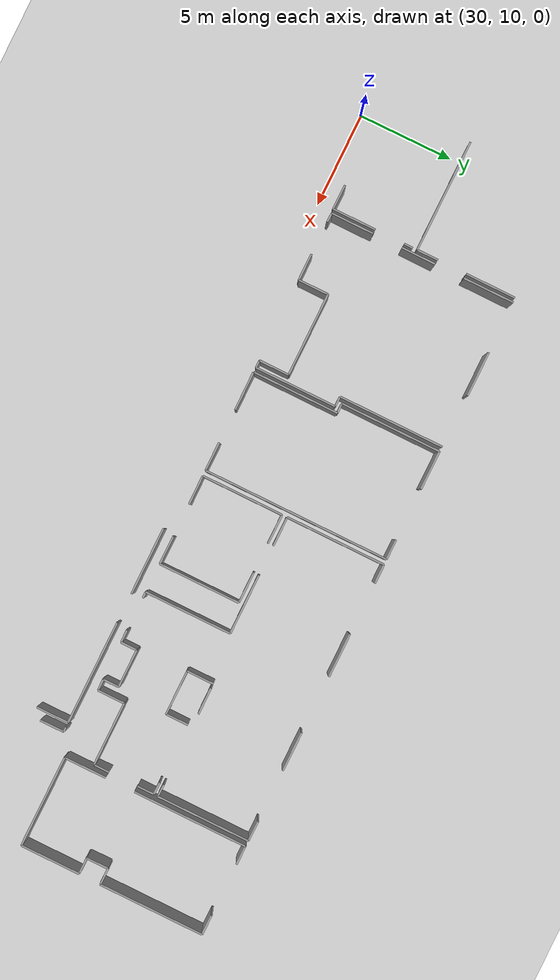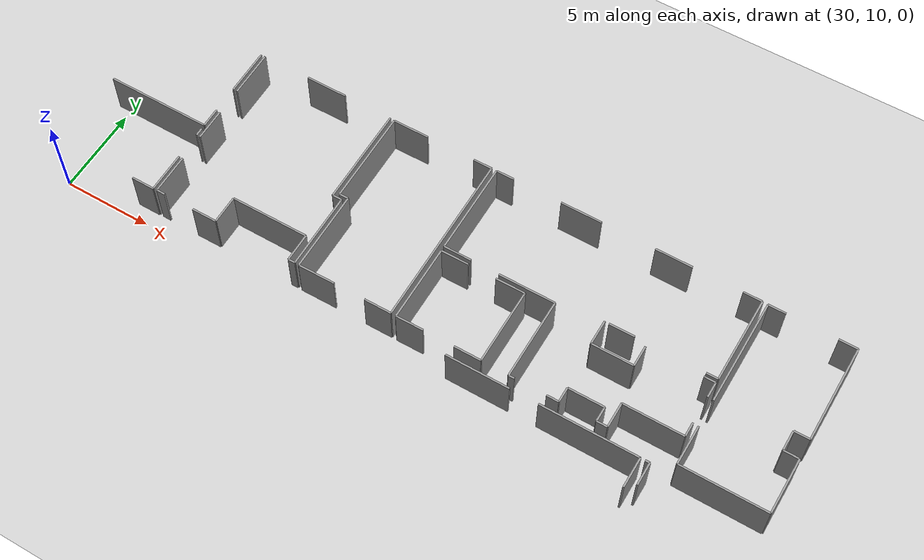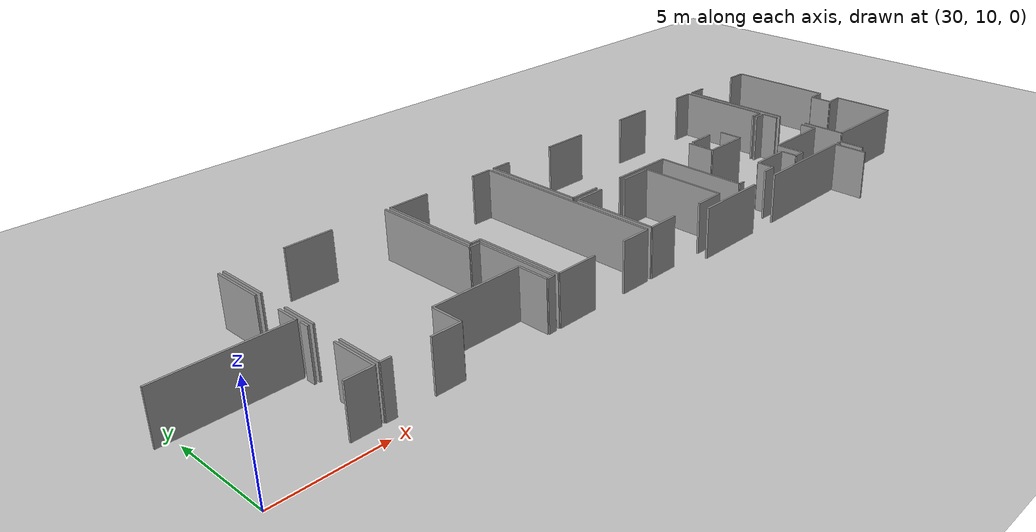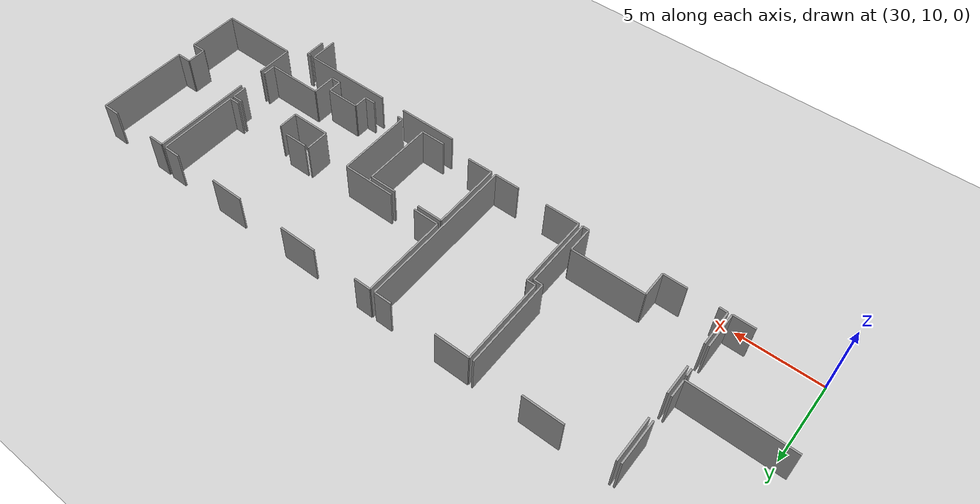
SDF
<sdf version="1.6">
 <world name="default">
  <model name="ground_plane">
   <static>1</static>
   <link name="link">
    <collision name="collision">
     <geometry><plane><normal>0 0 1</normal><size>100 100</size></plane></geometry>
     <surface><friction><ode><mu>100</mu><mu2>50</mu2></ode></friction></surface>
    </collision>
    <visual name="visual">
     <cast_shadows>0</cast_shadows>
     <geometry><plane><normal>0 0 1</normal><size>100 100</size></plane></geometry>
     <material>
      <script><uri>file://media/materials/scripts/gazebo.material</uri><name>Gazebo/Grey</name></script>
     </material>
    </visual>
   </link>
  </model>
  <model name="50055640">
   <static>1</static>
   <link name="Wall_373">
    <collision name="Wall_373_Collision">
     <geometry><box><size>3.5890146708 0.1 2.5</size></box></geometry>
     <pose>1.7945073354 0 1.25 0 0 0</pose>
    </collision>
    <visual name="Wall_373_Visual">
     <pose>1.7945073354 0 1.25 0 0 0</pose>
     <geometry><box><size>3.5890146708 0.1 2.5</size></box></geometry>
     <material>
      <script><uri>file://media/materials/scripts/gazebo.material</uri><name>Gazebo/Grey</name></script>
      <ambient>1 1 1 1</ambient>
     </material>
    </visual>
    <pose>123.435707396 -10.5616274938 0 0 0 0.0</pose>
   </link>
   <link name="Wall_374">
    <collision name="Wall_374_Collision">
     <geometry><box><size>5.48251180263 0.1 2.5</size></box></geometry>
     <pose>2.74125590131 0 1.25 0 0 0</pose>
    </collision>
    <visual name="Wall_374_Visual">
     <pose>2.74125590131 0 1.25 0 0 0</pose>
     <geometry><box><size>5.48251180263 0.1 2.5</size></box></geometry>
     <material>
      <script><uri>file://media/materials/scripts/gazebo.material</uri><name>Gazebo/Grey</name></script>
      <ambient>1 1 1 1</ambient>
     </material>
    </visual>
    <pose>128.60475151 -10.5616274938 0 0 0 0.0</pose>
   </link>
   <link name="Wall_375">
    <collision name="Wall_375_Collision">
     <geometry><box><size>1.72153408802 0.1 2.5</size></box></geometry>
     <pose>0.860767044012 0 1.25 0 0 0</pose>
    </collision>
    <visual name="Wall_375_Visual">
     <pose>0.860767044012 0 1.25 0 0 0</pose>
     <geometry><box><size>1.72153408802 0.1 2.5</size></box></geometry>
     <material>
      <script><uri>file://media/materials/scripts/gazebo.material</uri><name>Gazebo/Grey</name></script>
      <ambient>1 1 1 1</ambient>
     </material>
    </visual>
    <pose>134.087263313 -10.5616274938 0 0 0 -1.57079632679</pose>
   </link>
   <link name="Wall_400">
    <collision name="Wall_400_Collision">
     <geometry><box><size>0.475658662876 0.1 2.5</size></box></geometry>
     <pose>0.237829331438 0 1.25 0 0 0</pose>
    </collision>
    <visual name="Wall_400_Visual">
     <pose>0.237829331438 0 1.25 0 0 0</pose>
     <geometry><box><size>0.475658662876 0.1 2.5</size></box></geometry>
     <material>
      <script><uri>file://media/materials/scripts/gazebo.material</uri><name>Gazebo/Grey</name></script>
      <ambient>1 1 1 1</ambient>
     </material>
    </visual>
    <pose>105.632392507 -5.63257018123 0 0 0 -1.57079632679</pose>
   </link>
   <link name="Wall_401">
    <collision name="Wall_401_Collision">
     <geometry><box><size>2.30303568709 0.1 2.5</size></box></geometry>
     <pose>1.15151784355 0 1.25 0 0 0</pose>
    </collision>
    <visual name="Wall_401_Visual">
     <pose>1.15151784355 0 1.25 0 0 0</pose>
     <geometry><box><size>2.30303568709 0.1 2.5</size></box></geometry>
     <material>
      <script><uri>file://media/materials/scripts/gazebo.material</uri><name>Gazebo/Grey</name></script>
      <ambient>1 1 1 1</ambient>
     </material>
    </visual>
    <pose>105.632392507 -7.69244631707 0 0 0 -1.57079632679</pose>
   </link>
   <link name="Wall_402">
    <collision name="Wall_402_Collision">
     <geometry><box><size>1.30021827256 0.1 2.5</size></box></geometry>
     <pose>0.650109136279 0 1.25 0 0 0</pose>
    </collision>
    <visual name="Wall_402_Visual">
     <pose>0.650109136279 0 1.25 0 0 0</pose>
     <geometry><box><size>1.30021827256 0.1 2.5</size></box></geometry>
     <material>
      <script><uri>file://media/materials/scripts/gazebo.material</uri><name>Gazebo/Grey</name></script>
      <ambient>1 1 1 1</ambient>
     </material>
    </visual>
    <pose>105.632392507 -9.99548200416 0 0 0 3.13534578512</pose>
   </link>
   <link name="Wall_406">
    <collision name="Wall_406_Collision">
     <geometry><box><size>2.66995786588 0.1 2.5</size></box></geometry>
     <pose>1.33497893294 0 1.25 0 0 0</pose>
    </collision>
    <visual name="Wall_406_Visual">
     <pose>1.33497893294 0 1.25 0 0 0</pose>
     <geometry><box><size>2.66995786588 0.1 2.5</size></box></geometry>
     <material>
      <script><uri>file://media/materials/scripts/gazebo.material</uri><name>Gazebo/Grey</name></script>
      <ambient>1 1 1 1</ambient>
     </material>
    </visual>
    <pose>105.615767298 -0.025026651099 0 0 0 -1.57079632679</pose>
   </link>
   <link name="Wall_407">
    <collision name="Wall_407_Collision">
     <geometry><box><size>1.13229097924 0.1 2.5</size></box></geometry>
     <pose>0.566145489619 0 1.25 0 0 0</pose>
    </collision>
    <visual name="Wall_407_Visual">
     <pose>0.566145489619 0 1.25 0 0 0</pose>
     <geometry><box><size>1.13229097924 0.1 2.5</size></box></geometry>
     <material>
      <script><uri>file://media/materials/scripts/gazebo.material</uri><name>Gazebo/Grey</name></script>
      <ambient>1 1 1 1</ambient>
     </material>
    </visual>
    <pose>105.615767298 -4.25699274075 0 0 0 -1.57079632679</pose>
   </link>
   <link name="Wall_408">
    <collision name="Wall_408_Collision">
     <geometry><box><size>5.91859317276 0.1 2.5</size></box></geometry>
     <pose>2.95929658638 0 1.25 0 0 0</pose>
    </collision>
    <visual name="Wall_408_Visual">
     <pose>2.95929658638 0 1.25 0 0 0</pose>
     <geometry><box><size>5.91859317276 0.1 2.5</size></box></geometry>
     <material>
      <script><uri>file://media/materials/scripts/gazebo.material</uri><name>Gazebo/Grey</name></script>
      <ambient>1 1 1 1</ambient>
     </material>
    </visual>
    <pose>105.615767298 -5.38928371999 0 0 0 3.13908386736</pose>
   </link>
   <link name="Wall_409">
    <collision name="Wall_409_Collision">
     <geometry><box><size>2.26585105843 0.1 2.5</size></box></geometry>
     <pose>1.13292552921 0 1.25 0 0 0</pose>
    </collision>
    <visual name="Wall_409_Visual">
     <pose>1.13292552921 0 1.25 0 0 0</pose>
     <geometry><box><size>2.26585105843 0.1 2.5</size></box></geometry>
     <material>
      <script><uri>file://media/materials/scripts/gazebo.material</uri><name>Gazebo/Grey</name></script>
      <ambient>1 1 1 1</ambient>
     </material>
    </visual>
    <pose>105.851312249 -9.96147012539 0 0 0 1.57079632679</pose>
   </link>
   <link name="Wall_410">
    <collision name="Wall_410_Collision">
     <geometry><box><size>1.83194578405 0.1 2.5</size></box></geometry>
     <pose>0.915972892025 0 1.25 0 0 0</pose>
    </collision>
    <visual name="Wall_410_Visual">
     <pose>0.915972892025 0 1.25 0 0 0</pose>
     <geometry><box><size>1.83194578405 0.1 2.5</size></box></geometry>
     <material>
      <script><uri>file://media/materials/scripts/gazebo.material</uri><name>Gazebo/Grey</name></script>
      <ambient>1 1 1 1</ambient>
     </material>
    </visual>
    <pose>105.851312249 -6.12485405351 0 0 0 1.57079632679</pose>
   </link>
   <link name="Wall_411">
    <collision name="Wall_411_Collision">
     <geometry><box><size>2.70361439667 0.1 2.5</size></box></geometry>
     <pose>1.35180719833 0 1.25 0 0 0</pose>
    </collision>
    <visual name="Wall_411_Visual">
     <pose>1.35180719833 0 1.25 0 0 0</pose>
     <geometry><box><size>2.70361439667 0.1 2.5</size></box></geometry>
     <material>
      <script><uri>file://media/materials/scripts/gazebo.material</uri><name>Gazebo/Grey</name></script>
      <ambient>1 1 1 1</ambient>
     </material>
    </visual>
    <pose>105.851312249 -2.70361439667 0 0 0 1.57079632679</pose>
   </link>
   <link name="Wall_412">
    <collision name="Wall_412_Collision">
     <geometry><box><size>2.36154119498 0.1 2.5</size></box></geometry>
     <pose>1.18077059749 0 1.25 0 0 0</pose>
    </collision>
    <visual name="Wall_412_Visual">
     <pose>1.18077059749 0 1.25 0 0 0</pose>
     <geometry><box><size>2.36154119498 0.1 2.5</size></box></geometry>
     <material>
      <script><uri>file://media/materials/scripts/gazebo.material</uri><name>Gazebo/Grey</name></script>
      <ambient>1 1 1 1</ambient>
     </material>
    </visual>
    <pose>108.60310168 -0.0 0 0 0 0.0</pose>
   </link>
   <link name="Wall_413">
    <collision name="Wall_413_Collision">
     <geometry><box><size>5.61721407178 0.1 2.5</size></box></geometry>
     <pose>2.80860703589 0 1.25 0 0 0</pose>
    </collision>
    <visual name="Wall_413_Visual">
     <pose>2.80860703589 0 1.25 0 0 0</pose>
     <geometry><box><size>5.61721407178 0.1 2.5</size></box></geometry>
     <material>
      <script><uri>file://media/materials/scripts/gazebo.material</uri><name>Gazebo/Grey</name></script>
      <ambient>1 1 1 1</ambient>
     </material>
    </visual>
    <pose>113.779125844 -0.0 0 0 0 -1.57079632679</pose>
   </link>
   <link name="Wall_414">
    <collision name="Wall_414_Collision">
     <geometry><box><size>0.540636580537 0.1 2.5</size></box></geometry>
     <pose>0.270318290269 0 1.25 0 0 0</pose>
    </collision>
    <visual name="Wall_414_Visual">
     <pose>0.270318290269 0 1.25 0 0 0</pose>
     <geometry><box><size>0.540636580537 0.1 2.5</size></box></geometry>
     <material>
      <script><uri>file://media/materials/scripts/gazebo.material</uri><name>Gazebo/Grey</name></script>
      <ambient>1 1 1 1</ambient>
     </material>
    </visual>
    <pose>113.779125844 -5.61721407178 0 0 0 0.0</pose>
   </link>
   <link name="Wall_415">
    <collision name="Wall_415_Collision">
     <geometry><box><size>4.34806335347 0.1 2.5</size></box></geometry>
     <pose>2.17403167673 0 1.25 0 0 0</pose>
    </collision>
    <visual name="Wall_415_Visual">
     <pose>2.17403167673 0 1.25 0 0 0</pose>
     <geometry><box><size>4.34806335347 0.1 2.5</size></box></geometry>
     <material>
      <script><uri>file://media/materials/scripts/gazebo.material</uri><name>Gazebo/Grey</name></script>
      <ambient>1 1 1 1</ambient>
     </material>
    </visual>
    <pose>114.319762424 -5.61721407178 0 0 0 -1.57079632679</pose>
   </link>
   <link name="Wall_416">
    <collision name="Wall_416_Collision">
     <geometry><box><size>0.387075486065 0.1 2.5</size></box></geometry>
     <pose>0.193537743033 0 1.25 0 0 0</pose>
    </collision>
    <visual name="Wall_416_Visual">
     <pose>0.193537743033 0 1.25 0 0 0</pose>
     <geometry><box><size>0.387075486065 0.1 2.5</size></box></geometry>
     <material>
      <script><uri>file://media/materials/scripts/gazebo.material</uri><name>Gazebo/Grey</name></script>
      <ambient>1 1 1 1</ambient>
     </material>
    </visual>
    <pose>114.319762424 -9.96527742525 0 0 0 3.14159265359</pose>
   </link>
   <link name="Wall_417">
    <collision name="Wall_417_Collision">
     <geometry><box><size>1.60020813239 0.1 2.5</size></box></geometry>
     <pose>0.800104066196 0 1.25 0 0 0</pose>
    </collision>
    <visual name="Wall_417_Visual">
     <pose>0.800104066196 0 1.25 0 0 0</pose>
     <geometry><box><size>1.60020813239 0.1 2.5</size></box></geometry>
     <material>
      <script><uri>file://media/materials/scripts/gazebo.material</uri><name>Gazebo/Grey</name></script>
      <ambient>1 1 1 1</ambient>
     </material>
    </visual>
    <pose>113.932686938 -9.96527742525 0 0 0 1.57079632679</pose>
   </link>
   <link name="Wall_418">
    <collision name="Wall_418_Collision">
     <geometry><box><size>4.41367582111 0.1 2.5</size></box></geometry>
     <pose>2.20683791055 0 1.25 0 0 0</pose>
    </collision>
    <visual name="Wall_418_Visual">
     <pose>2.20683791055 0 1.25 0 0 0</pose>
     <geometry><box><size>4.41367582111 0.1 2.5</size></box></geometry>
     <material>
      <script><uri>file://media/materials/scripts/gazebo.material</uri><name>Gazebo/Grey</name></script>
      <ambient>1 1 1 1</ambient>
     </material>
    </visual>
    <pose>113.932686938 -8.36506929286 0 0 0 3.14159265359</pose>
   </link>
   <link name="Wall_419">
    <collision name="Wall_419_Collision">
     <geometry><box><size>1.611249302 0.1 2.5</size></box></geometry>
     <pose>0.805624650998 0 1.25 0 0 0</pose>
    </collision>
    <visual name="Wall_419_Visual">
     <pose>0.805624650998 0 1.25 0 0 0</pose>
     <geometry><box><size>1.611249302 0.1 2.5</size></box></geometry>
     <material>
      <script><uri>file://media/materials/scripts/gazebo.material</uri><name>Gazebo/Grey</name></script>
      <ambient>1 1 1 1</ambient>
     </material>
    </visual>
    <pose>109.519011117 -8.36506929286 0 0 0 -1.57079632679</pose>
   </link>
   <link name="Wall_420">
    <collision name="Wall_420_Collision">
     <geometry><box><size>1.42367632875 0.1 2.5</size></box></geometry>
     <pose>0.711838164374 0 1.25 0 0 0</pose>
    </collision>
    <visual name="Wall_420_Visual">
     <pose>0.711838164374 0 1.25 0 0 0</pose>
     <geometry><box><size>1.42367632875 0.1 2.5</size></box></geometry>
     <material>
      <script><uri>file://media/materials/scripts/gazebo.material</uri><name>Gazebo/Grey</name></script>
      <ambient>1 1 1 1</ambient>
     </material>
    </visual>
    <pose>109.519011117 -9.97631859485 0 0 0 3.14159265359</pose>
   </link>
   <link name="Wall_421">
    <collision name="Wall_421_Collision">
     <geometry><box><size>0.494537394877 0.1 2.5</size></box></geometry>
     <pose>0.247268697438 0 1.25 0 0 0</pose>
    </collision>
    <visual name="Wall_421_Visual">
     <pose>0.247268697438 0 1.25 0 0 0</pose>
     <geometry><box><size>0.494537394877 0.1 2.5</size></box></geometry>
     <material>
      <script><uri>file://media/materials/scripts/gazebo.material</uri><name>Gazebo/Grey</name></script>
      <ambient>1 1 1 1</ambient>
     </material>
    </visual>
    <pose>106.345626682 -9.97631859485 0 0 0 3.11156317249</pose>
   </link>
   <link name="Wall_422">
    <collision name="Wall_422_Collision">
     <geometry><box><size>4.59871059445 0.1 2.5</size></box></geometry>
     <pose>2.29935529722 0 1.25 0 0 0</pose>
    </collision>
    <visual name="Wall_422_Visual">
     <pose>2.29935529722 0 1.25 0 0 0</pose>
     <geometry><box><size>4.59871059445 0.1 2.5</size></box></geometry>
     <material>
      <script><uri>file://media/materials/scripts/gazebo.material</uri><name>Gazebo/Grey</name></script>
      <ambient>1 1 1 1</ambient>
     </material>
    </visual>
    <pose>114.562160516 -9.97822224478 0 0 0 1.57079632679</pose>
   </link>
   <link name="Wall_423">
    <collision name="Wall_423_Collision">
     <geometry><box><size>0.520330981268 0.1 2.5</size></box></geometry>
     <pose>0.260165490634 0 1.25 0 0 0</pose>
    </collision>
    <visual name="Wall_423_Visual">
     <pose>0.260165490634 0 1.25 0 0 0</pose>
     <geometry><box><size>0.520330981268 0.1 2.5</size></box></geometry>
     <material>
      <script><uri>file://media/materials/scripts/gazebo.material</uri><name>Gazebo/Grey</name></script>
      <ambient>1 1 1 1</ambient>
     </material>
    </visual>
    <pose>114.562160516 -5.37951165034 0 0 0 3.14159265359</pose>
   </link>
   <link name="Wall_424">
    <collision name="Wall_424_Collision">
     <geometry><box><size>5.34613432154 0.1 2.5</size></box></geometry>
     <pose>2.67306716077 0 1.25 0 0 0</pose>
    </collision>
    <visual name="Wall_424_Visual">
     <pose>2.67306716077 0 1.25 0 0 0</pose>
     <geometry><box><size>5.34613432154 0.1 2.5</size></box></geometry>
     <material>
      <script><uri>file://media/materials/scripts/gazebo.material</uri><name>Gazebo/Grey</name></script>
      <ambient>1 1 1 1</ambient>
     </material>
    </visual>
    <pose>114.041829534 -5.37951165034 0 0 0 1.57079632679</pose>
   </link>
   <link name="Wall_425">
    <collision name="Wall_425_Collision">
     <geometry><box><size>2.07117112544 0.1 2.5</size></box></geometry>
     <pose>1.03558556272 0 1.25 0 0 0</pose>
    </collision>
    <visual name="Wall_425_Visual">
     <pose>1.03558556272 0 1.25 0 0 0</pose>
     <geometry><box><size>2.07117112544 0.1 2.5</size></box></geometry>
     <material>
      <script><uri>file://media/materials/scripts/gazebo.material</uri><name>Gazebo/Grey</name></script>
      <ambient>1 1 1 1</ambient>
     </material>
    </visual>
    <pose>114.041829534 -0.0333773287984 0 0 0 0.0</pose>
   </link>
   <link name="Wall_426">
    <collision name="Wall_426_Collision">
     <geometry><box><size>1.06477486167 0.1 2.5</size></box></geometry>
     <pose>0.532387430834 0 1.25 0 0 0</pose>
    </collision>
    <visual name="Wall_426_Visual">
     <pose>0.532387430834 0 1.25 0 0 0</pose>
     <geometry><box><size>1.06477486167 0.1 2.5</size></box></geometry>
     <material>
      <script><uri>file://media/materials/scripts/gazebo.material</uri><name>Gazebo/Grey</name></script>
      <ambient>1 1 1 1</ambient>
     </material>
    </visual>
    <pose>118.89613686 -0.0333773287984 0 0 0 0.0</pose>
   </link>
   <link name="Wall_427">
    <collision name="Wall_427_Collision">
     <geometry><box><size>9.93012335652 0.1 2.5</size></box></geometry>
     <pose>4.96506167826 0 1.25 0 0 0</pose>
    </collision>
    <visual name="Wall_427_Visual">
     <pose>4.96506167826 0 1.25 0 0 0</pose>
     <geometry><box><size>9.93012335652 0.1 2.5</size></box></geometry>
     <material>
      <script><uri>file://media/materials/scripts/gazebo.material</uri><name>Gazebo/Grey</name></script>
      <ambient>1 1 1 1</ambient>
     </material>
    </visual>
    <pose>119.960911721 -0.0333773287984 0 0 0 -1.57079632679</pose>
   </link>
   <link name="Wall_428">
    <collision name="Wall_428_Collision">
     <geometry><box><size>1.52926544495 0.1 2.5</size></box></geometry>
     <pose>0.764632722473 0 1.25 0 0 0</pose>
    </collision>
    <visual name="Wall_428_Visual">
     <pose>0.764632722473 0 1.25 0 0 0</pose>
     <geometry><box><size>1.52926544495 0.1 2.5</size></box></geometry>
     <material>
      <script><uri>file://media/materials/scripts/gazebo.material</uri><name>Gazebo/Grey</name></script>
      <ambient>1 1 1 1</ambient>
     </material>
    </visual>
    <pose>119.960911721 -9.96350068531 0 0 0 3.14159265359</pose>
   </link>
   <link name="Wall_429">
    <collision name="Wall_429_Collision">
     <geometry><box><size>2.07376157992 0.1 2.5</size></box></geometry>
     <pose>1.03688078996 0 1.25 0 0 0</pose>
    </collision>
    <visual name="Wall_429_Visual">
     <pose>1.03688078996 0 1.25 0 0 0</pose>
     <geometry><box><size>2.07376157992 0.1 2.5</size></box></geometry>
     <material>
      <script><uri>file://media/materials/scripts/gazebo.material</uri><name>Gazebo/Grey</name></script>
      <ambient>1 1 1 1</ambient>
     </material>
    </visual>
    <pose>116.635869841 -9.96350068531 0 0 0 -3.13449362964</pose>
   </link>
   <link name="Wall_430">
    <collision name="Wall_430_Collision">
     <geometry><box><size>4.35364739327 0.1 2.5</size></box></geometry>
     <pose>2.17682369663 0 1.25 0 0 0</pose>
    </collision>
    <visual name="Wall_430_Visual">
     <pose>2.17682369663 0 1.25 0 0 0</pose>
     <geometry><box><size>4.35364739327 0.1 2.5</size></box></geometry>
     <material>
      <script><uri>file://media/materials/scripts/gazebo.material</uri><name>Gazebo/Grey</name></script>
      <ambient>1 1 1 1</ambient>
     </material>
    </visual>
    <pose>120.259150211 -9.9666734352 0 0 0 1.57079632679</pose>
   </link>
   <link name="Wall_431">
    <collision name="Wall_431_Collision">
     <geometry><box><size>1.57114574344 0.1 2.5</size></box></geometry>
     <pose>0.785572871719 0 1.25 0 0 0</pose>
    </collision>
    <visual name="Wall_431_Visual">
     <pose>0.785572871719 0 1.25 0 0 0</pose>
     <geometry><box><size>1.57114574344 0.1 2.5</size></box></geometry>
     <material>
      <script><uri>file://media/materials/scripts/gazebo.material</uri><name>Gazebo/Grey</name></script>
      <ambient>1 1 1 1</ambient>
     </material>
    </visual>
    <pose>120.259150211 -5.61302604193 0 0 0 0.0</pose>
   </link>
   <link name="Wall_432">
    <collision name="Wall_432_Collision">
     <geometry><box><size>1.65998274024 0.1 2.5</size></box></geometry>
     <pose>0.82999137012 0 1.25 0 0 0</pose>
    </collision>
    <visual name="Wall_432_Visual">
     <pose>0.82999137012 0 1.25 0 0 0</pose>
     <geometry><box><size>1.65998274024 0.1 2.5</size></box></geometry>
     <material>
      <script><uri>file://media/materials/scripts/gazebo.material</uri><name>Gazebo/Grey</name></script>
      <ambient>1 1 1 1</ambient>
     </material>
    </visual>
    <pose>123.423016397 -5.61302604193 0 0 0 0.0</pose>
   </link>
   <link name="Wall_433">
    <collision name="Wall_433_Collision">
     <geometry><box><size>4.34197167369 0.1 2.5</size></box></geometry>
     <pose>2.17098583684 0 1.25 0 0 0</pose>
    </collision>
    <visual name="Wall_433_Visual">
     <pose>2.17098583684 0 1.25 0 0 0</pose>
     <geometry><box><size>4.34197167369 0.1 2.5</size></box></geometry>
     <material>
      <script><uri>file://media/materials/scripts/gazebo.material</uri><name>Gazebo/Grey</name></script>
      <ambient>1 1 1 1</ambient>
     </material>
    </visual>
    <pose>125.082999137 -5.61302604193 0 0 0 -1.57079632679</pose>
   </link>
   <link name="Wall_434">
    <collision name="Wall_434_Collision">
     <geometry><box><size>1.51784354536 0.1 2.5</size></box></geometry>
     <pose>0.758921772679 0 1.25 0 0 0</pose>
    </collision>
    <visual name="Wall_434_Visual">
     <pose>0.758921772679 0 1.25 0 0 0</pose>
     <geometry><box><size>1.51784354536 0.1 2.5</size></box></geometry>
     <material>
      <script><uri>file://media/materials/scripts/gazebo.material</uri><name>Gazebo/Grey</name></script>
      <ambient>1 1 1 1</ambient>
     </material>
    </visual>
    <pose>125.082999137 -9.95499771562 0 0 0 3.14159265359</pose>
   </link>
   <link name="Wall_435">
    <collision name="Wall_435_Collision">
     <geometry><box><size>1.5534222228 0.1 2.5</size></box></geometry>
     <pose>0.776711111398 0 1.25 0 0 0</pose>
    </collision>
    <visual name="Wall_435_Visual">
     <pose>0.776711111398 0 1.25 0 0 0</pose>
     <geometry><box><size>1.5534222228 0.1 2.5</size></box></geometry>
     <material>
      <script><uri>file://media/materials/scripts/gazebo.material</uri><name>Gazebo/Grey</name></script>
      <ambient>1 1 1 1</ambient>
     </material>
    </visual>
    <pose>121.812528555 -9.95499771562 0 0 0 -3.13407645526</pose>
   </link>
   <link name="Wall_436">
    <collision name="Wall_436_Collision">
     <geometry><box><size>5.30642418397 0.1 2.5</size></box></geometry>
     <pose>2.65321209198 0 1.25 0 0 0</pose>
    </collision>
    <visual name="Wall_436_Visual">
     <pose>2.65321209198 0 1.25 0 0 0</pose>
     <geometry><box><size>5.30642418397 0.1 2.5</size></box></geometry>
     <material>
      <script><uri>file://media/materials/scripts/gazebo.material</uri><name>Gazebo/Grey</name></script>
      <ambient>1 1 1 1</ambient>
     </material>
    </visual>
    <pose>120.251535611 -5.33217422204 0 0 0 1.57079632679</pose>
   </link>
   <link name="Wall_437">
    <collision name="Wall_437_Collision">
     <geometry><box><size>1.01908726331 0.1 2.5</size></box></geometry>
     <pose>0.509543631656 0 1.25 0 0 0</pose>
    </collision>
    <visual name="Wall_437_Visual">
     <pose>0.509543631656 0 1.25 0 0 0</pose>
     <geometry><box><size>1.01908726331 0.1 2.5</size></box></geometry>
     <material>
      <script><uri>file://media/materials/scripts/gazebo.material</uri><name>Gazebo/Grey</name></script>
      <ambient>1 1 1 1</ambient>
     </material>
    </visual>
    <pose>120.251535611 -0.025750038073 0 0 0 0.0</pose>
   </link>
   <link name="Wall_438">
    <collision name="Wall_438_Collision">
     <geometry><box><size>2.34656581552 0.1 2.5</size></box></geometry>
     <pose>1.17328290776 0 1.25 0 0 0</pose>
    </collision>
    <visual name="Wall_438_Visual">
     <pose>1.17328290776 0 1.25 0 0 0</pose>
     <geometry><box><size>2.34656581552 0.1 2.5</size></box></geometry>
     <material>
      <script><uri>file://media/materials/scripts/gazebo.material</uri><name>Gazebo/Grey</name></script>
      <ambient>1 1 1 1</ambient>
     </material>
    </visual>
    <pose>124.060104574 -0.025750038073 0 0 0 0.0</pose>
   </link>
   <link name="Wall_439">
    <collision name="Wall_439_Collision">
     <geometry><box><size>1.43725569826 0.1 2.5</size></box></geometry>
     <pose>0.718627849129 0 1.25 0 0 0</pose>
    </collision>
    <visual name="Wall_439_Visual">
     <pose>0.718627849129 0 1.25 0 0 0</pose>
     <geometry><box><size>1.43725569826 0.1 2.5</size></box></geometry>
     <material>
      <script><uri>file://media/materials/scripts/gazebo.material</uri><name>Gazebo/Grey</name></script>
      <ambient>1 1 1 1</ambient>
     </material>
    </visual>
    <pose>129.221534088 -4.97885679476 0 0 0 -1.57079632679</pose>
   </link>
   <link name="Wall_440">
    <collision name="Wall_440_Collision">
     <geometry><box><size>2.36179501498 0.1 2.5</size></box></geometry>
     <pose>1.18089750749 0 1.25 0 0 0</pose>
    </collision>
    <visual name="Wall_440_Visual">
     <pose>1.18089750749 0 1.25 0 0 0</pose>
     <geometry><box><size>2.36179501498 0.1 2.5</size></box></geometry>
     <material>
      <script><uri>file://media/materials/scripts/gazebo.material</uri><name>Gazebo/Grey</name></script>
      <ambient>1 1 1 1</ambient>
     </material>
    </visual>
    <pose>129.221534088 -6.41611249302 0 0 0 0.0</pose>
   </link>
   <link name="Wall_441">
    <collision name="Wall_441_Collision">
     <geometry><box><size>1.20386821666 0.1 2.5</size></box></geometry>
     <pose>0.60193410833 0 1.25 0 0 0</pose>
    </collision>
    <visual name="Wall_441_Visual">
     <pose>0.60193410833 0 1.25 0 0 0</pose>
     <geometry><box><size>1.20386821666 0.1 2.5</size></box></geometry>
     <material>
      <script><uri>file://media/materials/scripts/gazebo.material</uri><name>Gazebo/Grey</name></script>
      <ambient>1 1 1 1</ambient>
     </material>
    </visual>
    <pose>131.583329103 -6.41611249302 0 0 0 1.57079632679</pose>
   </link>
   <link name="Wall_442">
    <collision name="Wall_442_Collision">
     <geometry><box><size>0.643433676836 0.1 2.5</size></box></geometry>
     <pose>0.321716838418 0 1.25 0 0 0</pose>
    </collision>
    <visual name="Wall_442_Visual">
     <pose>0.321716838418 0 1.25 0 0 0</pose>
     <geometry><box><size>0.643433676836 0.1 2.5</size></box></geometry>
     <material>
      <script><uri>file://media/materials/scripts/gazebo.material</uri><name>Gazebo/Grey</name></script>
      <ambient>1 1 1 1</ambient>
     </material>
    </visual>
    <pose>134.748464389 -5.21224427636 0 0 0 0.0</pose>
   </link>
   <link name="Wall_443">
    <collision name="Wall_443_Collision">
     <geometry><box><size>0.902330067516 0.1 2.5</size></box></geometry>
     <pose>0.451165033758 0 1.25 0 0 0</pose>
    </collision>
    <visual name="Wall_443_Visual">
     <pose>0.451165033758 0 1.25 0 0 0</pose>
     <geometry><box><size>0.902330067516 0.1 2.5</size></box></geometry>
     <material>
      <script><uri>file://media/materials/scripts/gazebo.material</uri><name>Gazebo/Grey</name></script>
      <ambient>1 1 1 1</ambient>
     </material>
    </visual>
    <pose>135.391898066 -5.21224427636 0 0 0 -1.57079632679</pose>
   </link>
   <link name="Wall_444">
    <collision name="Wall_444_Collision">
     <geometry><box><size>0.819965480481 0.1 2.5</size></box></geometry>
     <pose>0.409982740241 0 1.25 0 0 0</pose>
    </collision>
    <visual name="Wall_444_Visual">
     <pose>0.409982740241 0 1.25 0 0 0</pose>
     <geometry><box><size>0.819965480481 0.1 2.5</size></box></geometry>
     <material>
      <script><uri>file://media/materials/scripts/gazebo.material</uri><name>Gazebo/Grey</name></script>
      <ambient>1 1 1 1</ambient>
     </material>
    </visual>
    <pose>135.391898066 -7.68089750749 0 0 0 -1.57079632679</pose>
   </link>
   <link name="Wall_445">
    <collision name="Wall_445_Collision">
     <geometry><box><size>3.38088227829 0.1 2.5</size></box></geometry>
     <pose>1.69044113914 0 1.25 0 0 0</pose>
    </collision>
    <visual name="Wall_445_Visual">
     <pose>1.69044113914 0 1.25 0 0 0</pose>
     <geometry><box><size>3.38088227829 0.1 2.5</size></box></geometry>
     <material>
      <script><uri>file://media/materials/scripts/gazebo.material</uri><name>Gazebo/Grey</name></script>
      <ambient>1 1 1 1</ambient>
     </material>
    </visual>
    <pose>135.391898066 -8.50086298797 0 0 0 3.14159265359</pose>
   </link>
   <link name="Wall_446">
    <collision name="Wall_446_Collision">
     <geometry><box><size>1.44398192802 0.1 2.5</size></box></geometry>
     <pose>0.721990964008 0 1.25 0 0 0</pose>
    </collision>
    <visual name="Wall_446_Visual">
     <pose>0.721990964008 0 1.25 0 0 0</pose>
     <geometry><box><size>1.44398192802 0.1 2.5</size></box></geometry>
     <material>
      <script><uri>file://media/materials/scripts/gazebo.material</uri><name>Gazebo/Grey</name></script>
      <ambient>1 1 1 1</ambient>
     </material>
    </visual>
    <pose>132.011015788 -8.50086298797 0 0 0 -1.57079632679</pose>
   </link>
   <link name="Wall_447">
    <collision name="Wall_447_Collision">
     <geometry><box><size>0.595207878572 0.1 2.5</size></box></geometry>
     <pose>0.297603939286 0 1.25 0 0 0</pose>
    </collision>
    <visual name="Wall_447_Visual">
     <pose>0.297603939286 0 1.25 0 0 0</pose>
     <geometry><box><size>0.595207878572 0.1 2.5</size></box></geometry>
     <material>
      <script><uri>file://media/materials/scripts/gazebo.material</uri><name>Gazebo/Grey</name></script>
      <ambient>1 1 1 1</ambient>
     </material>
    </visual>
    <pose>132.011015788 -9.94484491599 0 0 0 3.14159265359</pose>
   </link>
   <link name="Wall_448">
    <collision name="Wall_448_Collision">
     <geometry><box><size>0.8416670897 0.1 2.5</size></box></geometry>
     <pose>0.42083354485 0 1.25 0 0 0</pose>
    </collision>
    <visual name="Wall_448_Visual">
     <pose>0.42083354485 0 1.25 0 0 0</pose>
     <geometry><box><size>0.8416670897 0.1 2.5</size></box></geometry>
     <material>
      <script><uri>file://media/materials/scripts/gazebo.material</uri><name>Gazebo/Grey</name></script>
      <ambient>1 1 1 1</ambient>
     </material>
    </visual>
    <pose>131.415807909 -9.94484491599 0 0 0 1.57079632679</pose>
   </link>
   <link name="Wall_449">
    <collision name="Wall_449_Collision">
     <geometry><box><size>2.02421442713 0.1 2.5</size></box></geometry>
     <pose>1.01210721356 0 1.25 0 0 0</pose>
    </collision>
    <visual name="Wall_449_Visual">
     <pose>1.01210721356 0 1.25 0 0 0</pose>
     <geometry><box><size>2.02421442713 0.1 2.5</size></box></geometry>
     <material>
      <script><uri>file://media/materials/scripts/gazebo.material</uri><name>Gazebo/Grey</name></script>
      <ambient>1 1 1 1</ambient>
     </material>
    </visual>
    <pose>131.415807909 -9.10317782629 0 0 0 3.14159265359</pose>
   </link>
   <link name="Wall_450">
    <collision name="Wall_450_Collision">
     <geometry><box><size>0.863495608914 0.1 2.5</size></box></geometry>
     <pose>0.431747804457 0 1.25 0 0 0</pose>
    </collision>
    <visual name="Wall_450_Visual">
     <pose>0.431747804457 0 1.25 0 0 0</pose>
     <geometry><box><size>0.863495608914 0.1 2.5</size></box></geometry>
     <material>
      <script><uri>file://media/materials/scripts/gazebo.material</uri><name>Gazebo/Grey</name></script>
      <ambient>1 1 1 1</ambient>
     </material>
    </visual>
    <pose>129.391593482 -9.10317782629 0 0 0 -1.57079632679</pose>
   </link>
   <link name="Wall_451">
    <collision name="Wall_451_Collision">
     <geometry><box><size>0.675161175694 0.1 2.5</size></box></geometry>
     <pose>0.337580587847 0 1.25 0 0 0</pose>
    </collision>
    <visual name="Wall_451_Visual">
     <pose>0.337580587847 0 1.25 0 0 0</pose>
     <geometry><box><size>0.675161175694 0.1 2.5</size></box></geometry>
     <material>
      <script><uri>file://media/materials/scripts/gazebo.material</uri><name>Gazebo/Grey</name></script>
      <ambient>1 1 1 1</ambient>
     </material>
    </visual>
    <pose>129.391593482 -9.9666734352 0 0 0 3.14159265359</pose>
   </link>
   <link name="Wall_452">
    <collision name="Wall_452_Collision">
     <geometry><box><size>0.324889588304 0.1 2.5</size></box></geometry>
     <pose>0.162444794152 0 1.25 0 0 0</pose>
    </collision>
    <visual name="Wall_452_Visual">
     <pose>0.162444794152 0 1.25 0 0 0</pose>
     <geometry><box><size>0.324889588304 0.1 2.5</size></box></geometry>
     <material>
      <script><uri>file://media/materials/scripts/gazebo.material</uri><name>Gazebo/Grey</name></script>
      <ambient>1 1 1 1</ambient>
     </material>
    </visual>
    <pose>126.95492157 -9.9666734352 0 0 0 3.14159265359</pose>
   </link>
   <link name="Wall_453">
    <collision name="Wall_453_Collision">
     <geometry><box><size>4.63754505305 0.1 2.5</size></box></geometry>
     <pose>2.31877252652 0 1.25 0 0 0</pose>
    </collision>
    <visual name="Wall_453_Visual">
     <pose>2.31877252652 0 1.25 0 0 0</pose>
     <geometry><box><size>4.63754505305 0.1 2.5</size></box></geometry>
     <material>
      <script><uri>file://media/materials/scripts/gazebo.material</uri><name>Gazebo/Grey</name></script>
      <ambient>1 1 1 1</ambient>
     </material>
    </visual>
    <pose>126.630031981 -9.9666734352 0 0 0 1.57079632679</pose>
   </link>
   <link name="Wall_454">
    <collision name="Wall_454_Collision">
     <geometry><box><size>3.19813188487 0.1 2.5</size></box></geometry>
     <pose>1.59906594243 0 1.25 0 0 0</pose>
    </collision>
    <visual name="Wall_454_Visual">
     <pose>1.59906594243 0 1.25 0 0 0</pose>
     <geometry><box><size>3.19813188487 0.1 2.5</size></box></geometry>
     <material>
      <script><uri>file://media/materials/scripts/gazebo.material</uri><name>Gazebo/Grey</name></script>
      <ambient>1 1 1 1</ambient>
     </material>
    </visual>
    <pose>126.630031981 -5.32912838215 0 0 0 3.14159265359</pose>
   </link>
   <link name="Wall_455">
    <collision name="Wall_455_Collision">
     <geometry><box><size>1.57495598851 0.1 2.5</size></box></geometry>
     <pose>0.787477994255 0 1.25 0 0 0</pose>
    </collision>
    <visual name="Wall_455_Visual">
     <pose>0.787477994255 0 1.25 0 0 0</pose>
     <geometry><box><size>1.57495598851 0.1 2.5</size></box></geometry>
     <material>
      <script><uri>file://media/materials/scripts/gazebo.material</uri><name>Gazebo/Grey</name></script>
      <ambient>1 1 1 1</ambient>
     </material>
    </visual>
    <pose>121.826488654 -5.32912838215 0 0 0 -3.13965873175</pose>
   </link>
   <link name="Wall_456">
    <collision name="Wall_456_Collision">
     <geometry><box><size>2.08640032489 0.1 2.5</size></box></geometry>
     <pose>1.04320016244 0 1.25 0 0 0</pose>
    </collision>
    <visual name="Wall_456_Visual">
     <pose>1.04320016244 0 1.25 0 0 0</pose>
     <geometry><box><size>2.08640032489 0.1 2.5</size></box></geometry>
     <material>
      <script><uri>file://media/materials/scripts/gazebo.material</uri><name>Gazebo/Grey</name></script>
      <ambient>1 1 1 1</ambient>
     </material>
    </visual>
    <pose>129.463932179 -0.025026651099 0 0 0 0.0</pose>
   </link>
   <link name="Wall_457">
    <collision name="Wall_457_Collision">
     <geometry><box><size>1.06858216153 0.1 2.5</size></box></geometry>
     <pose>0.534291080766 0 1.25 0 0 0</pose>
    </collision>
    <visual name="Wall_457_Visual">
     <pose>0.534291080766 0 1.25 0 0 0</pose>
     <geometry><box><size>1.06858216153 0.1 2.5</size></box></geometry>
     <material>
      <script><uri>file://media/materials/scripts/gazebo.material</uri><name>Gazebo/Grey</name></script>
      <ambient>1 1 1 1</ambient>
     </material>
    </visual>
    <pose>134.337276004 -0.025026651099 0 0 0 0.0</pose>
   </link>
   <link name="Wall_458">
    <collision name="Wall_458_Collision">
     <geometry><box><size>4.9611909234 0.1 2.5</size></box></geometry>
     <pose>2.4805954617 0 1.25 0 0 0</pose>
    </collision>
    <visual name="Wall_458_Visual">
     <pose>2.4805954617 0 1.25 0 0 0</pose>
     <geometry><box><size>4.9611909234 0.1 2.5</size></box></geometry>
     <material>
      <script><uri>file://media/materials/scripts/gazebo.material</uri><name>Gazebo/Grey</name></script>
      <ambient>1 1 1 1</ambient>
     </material>
    </visual>
    <pose>135.405858165 -0.025026651099 0 0 0 -1.57079632679</pose>
   </link>
   <link name="Wall_459">
    <collision name="Wall_459_Collision">
     <geometry><box><size>0.651048276562 0.1 2.5</size></box></geometry>
     <pose>0.325524138281 0 1.25 0 0 0</pose>
    </collision>
    <visual name="Wall_459_Visual">
     <pose>0.325524138281 0 1.25 0 0 0</pose>
     <geometry><box><size>0.651048276562 0.1 2.5</size></box></geometry>
     <material>
      <script><uri>file://media/materials/scripts/gazebo.material</uri><name>Gazebo/Grey</name></script>
      <ambient>1 1 1 1</ambient>
     </material>
    </visual>
    <pose>135.405858165 -4.9862175745 0 0 0 3.14159265359</pose>
   </link>
   <link name="Wall_460">
    <collision name="Wall_460_Collision">
     <geometry><box><size>1.41890605576 0.1 2.5</size></box></geometry>
     <pose>0.709453027881 0 1.25 0 0 0</pose>
    </collision>
    <visual name="Wall_460_Visual">
     <pose>0.709453027881 0 1.25 0 0 0</pose>
     <geometry><box><size>1.41890605576 0.1 2.5</size></box></geometry>
     <material>
      <script><uri>file://media/materials/scripts/gazebo.material</uri><name>Gazebo/Grey</name></script>
      <ambient>1 1 1 1</ambient>
     </material>
    </visual>
    <pose>130.882785928 -4.9862175745 0 0 0 -3.13300610255</pose>
   </link>
   <link name="Wall_461">
    <collision name="Wall_461_Collision">
     <geometry><box><size>2.24465708919 0.1 2.5</size></box></geometry>
     <pose>1.1223285446 0 1.25 0 0 0</pose>
    </collision>
    <visual name="Wall_461_Visual">
     <pose>1.1223285446 0 1.25 0 0 0</pose>
     <geometry><box><size>2.24465708919 0.1 2.5</size></box></geometry>
     <material>
      <script><uri>file://media/materials/scripts/gazebo.material</uri><name>Gazebo/Grey</name></script>
      <ambient>1 1 1 1</ambient>
     </material>
    </visual>
    <pose>135.706634855 -9.95499771562 0 0 0 1.57079632679</pose>
   </link>
   <link name="Wall_462">
    <collision name="Wall_462_Collision">
     <geometry><box><size>6.0916797807 0.1 2.5</size></box></geometry>
     <pose>3.04583989035 0 1.25 0 0 0</pose>
    </collision>
    <visual name="Wall_462_Visual">
     <pose>3.04583989035 0 1.25 0 0 0</pose>
     <geometry><box><size>6.0916797807 0.1 2.5</size></box></geometry>
     <material>
      <script><uri>file://media/materials/scripts/gazebo.material</uri><name>Gazebo/Grey</name></script>
      <ambient>1 1 1 1</ambient>
     </material>
    </visual>
    <pose>135.706634855 -6.13424539317 0 0 0 1.57079632679</pose>
   </link>
   <link name="Wall_463">
    <collision name="Wall_463_Collision">
     <geometry><box><size>0.981014264683 0.1 2.5</size></box></geometry>
     <pose>0.490507132342 0 1.25 0 0 0</pose>
    </collision>
    <visual name="Wall_463_Visual">
     <pose>0.490507132342 0 1.25 0 0 0</pose>
     <geometry><box><size>0.981014264683 0.1 2.5</size></box></geometry>
     <material>
      <script><uri>file://media/materials/scripts/gazebo.material</uri><name>Gazebo/Grey</name></script>
      <ambient>1 1 1 1</ambient>
     </material>
    </visual>
    <pose>135.706634855 -0.0425656124676 0 0 0 0.0</pose>
   </link>
   <link name="Wall_464">
    <collision name="Wall_464_Collision">
     <geometry><box><size>1.04066196254 0.1 2.5</size></box></geometry>
     <pose>0.520330981268 0 1.25 0 0 0</pose>
    </collision>
    <visual name="Wall_464_Visual">
     <pose>0.520330981268 0 1.25 0 0 0</pose>
     <geometry><box><size>1.04066196254 0.1 2.5</size></box></geometry>
     <material>
      <script><uri>file://media/materials/scripts/gazebo.material</uri><name>Gazebo/Grey</name></script>
      <ambient>1 1 1 1</ambient>
     </material>
    </visual>
    <pose>139.505051018 -0.0425656124676 0 0 0 0.0</pose>
   </link>
   <link name="Wall_465">
    <collision name="Wall_465_Collision">
     <geometry><box><size>5.58403979897 0.1 2.5</size></box></geometry>
     <pose>2.79201989949 0 1.25 0 0 0</pose>
    </collision>
    <visual name="Wall_465_Visual">
     <pose>2.79201989949 0 1.25 0 0 0</pose>
     <geometry><box><size>5.58403979897 0.1 2.5</size></box></geometry>
     <material>
      <script><uri>file://media/materials/scripts/gazebo.material</uri><name>Gazebo/Grey</name></script>
      <ambient>1 1 1 1</ambient>
     </material>
    </visual>
    <pose>140.54571298 -0.0425656124676 0 0 0 -1.57079632679</pose>
   </link>
   <link name="Wall_466">
    <collision name="Wall_466_Collision">
     <geometry><box><size>0.875678968476 0.1 2.5</size></box></geometry>
     <pose>0.437839484238 0 1.25 0 0 0</pose>
    </collision>
    <visual name="Wall_466_Visual">
     <pose>0.437839484238 0 1.25 0 0 0</pose>
     <geometry><box><size>0.875678968476 0.1 2.5</size></box></geometry>
     <material>
      <script><uri>file://media/materials/scripts/gazebo.material</uri><name>Gazebo/Grey</name></script>
      <ambient>1 1 1 1</ambient>
     </material>
    </visual>
    <pose>140.54571298 -5.62660541144 0 0 0 3.14159265359</pose>
   </link>
   <link name="Wall_467">
    <collision name="Wall_467_Collision">
     <geometry><box><size>1.16757195797 0.1 2.5</size></box></geometry>
     <pose>0.583785978984 0 1.25 0 0 0</pose>
    </collision>
    <visual name="Wall_467_Visual">
     <pose>0.583785978984 0 1.25 0 0 0</pose>
     <geometry><box><size>1.16757195797 0.1 2.5</size></box></geometry>
     <material>
      <script><uri>file://media/materials/scripts/gazebo.material</uri><name>Gazebo/Grey</name></script>
      <ambient>1 1 1 1</ambient>
     </material>
    </visual>
    <pose>139.670034012 -5.62660541144 0 0 0 -1.57079632679</pose>
   </link>
   <link name="Wall_468">
    <collision name="Wall_468_Collision">
     <geometry><box><size>0.862987968932 0.1 2.5</size></box></geometry>
     <pose>0.431493984466 0 1.25 0 0 0</pose>
    </collision>
    <visual name="Wall_468_Visual">
     <pose>0.431493984466 0 1.25 0 0 0</pose>
     <geometry><box><size>0.862987968932 0.1 2.5</size></box></geometry>
     <material>
      <script><uri>file://media/materials/scripts/gazebo.material</uri><name>Gazebo/Grey</name></script>
      <ambient>1 1 1 1</ambient>
     </material>
    </visual>
    <pose>139.670034012 -6.79417736941 0 0 0 0.0</pose>
   </link>
   <link name="Wall_469">
    <collision name="Wall_469_Collision">
     <geometry><box><size>3.17110005584 0.1 2.5</size></box></geometry>
     <pose>1.58555002792 0 1.25 0 0 0</pose>
    </collision>
    <visual name="Wall_469_Visual">
     <pose>1.58555002792 0 1.25 0 0 0</pose>
     <geometry><box><size>3.17110005584 0.1 2.5</size></box></geometry>
     <material>
      <script><uri>file://media/materials/scripts/gazebo.material</uri><name>Gazebo/Grey</name></script>
      <ambient>1 1 1 1</ambient>
     </material>
    </visual>
    <pose>140.533021981 -6.79417736941 0 0 0 -1.57079632679</pose>
   </link>
   <link name="Wall_470">
    <collision name="Wall_470_Collision">
     <geometry><box><size>4.8263980736 0.1 2.5</size></box></geometry>
     <pose>2.4131990368 0 1.25 0 0 0</pose>
    </collision>
    <visual name="Wall_470_Visual">
     <pose>2.4131990368 0 1.25 0 0 0</pose>
     <geometry><box><size>4.8263980736 0.1 2.5</size></box></geometry>
     <material>
      <script><uri>file://media/materials/scripts/gazebo.material</uri><name>Gazebo/Grey</name></script>
      <ambient>1 1 1 1</ambient>
     </material>
    </visual>
    <pose>140.533021981 -9.96527742525 0 0 0 3.13946275936</pose>
   </link>
   <link name="Wall_473">
    <collision name="Wall_473_Collision">
     <geometry><box><size>0.250012691 0.1 2.5</size></box></geometry>
     <pose>0.1250063455 0 1.25 0 0 0</pose>
    </collision>
    <visual name="Wall_473_Visual">
     <pose>0.1250063455 0 1.25 0 0 0</pose>
     <geometry><box><size>0.250012691 0.1 2.5</size></box></geometry>
     <material>
      <script><uri>file://media/materials/scripts/gazebo.material</uri><name>Gazebo/Grey</name></script>
      <ambient>1 1 1 1</ambient>
     </material>
    </visual>
    <pose>134.337276004 -10.5612467638 0 0 0 0.0</pose>
   </link>
   <link name="Wall_474">
    <collision name="Wall_474_Collision">
     <geometry><box><size>1.28635971369 0.1 2.5</size></box></geometry>
     <pose>0.643179856846 0 1.25 0 0 0</pose>
    </collision>
    <visual name="Wall_474_Visual">
     <pose>0.643179856846 0 1.25 0 0 0</pose>
     <geometry><box><size>1.28635971369 0.1 2.5</size></box></geometry>
     <material>
      <script><uri>file://media/materials/scripts/gazebo.material</uri><name>Gazebo/Grey</name></script>
      <ambient>1 1 1 1</ambient>
     </material>
    </visual>
    <pose>134.587288695 -10.5612467638 0 0 0 -1.57079632679</pose>
   </link>
   <pose>-70.4 20.8977283111 0 0 0 0</pose>
  </model>
 </world>
</sdf>
